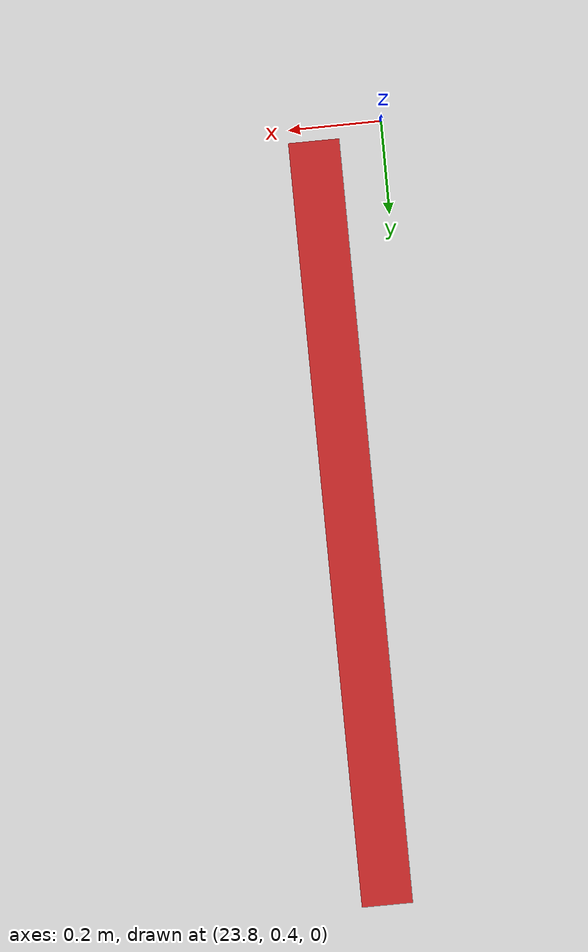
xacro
<?xml version="1.0"?>
<robot name="simple_box1">
<link name="world"/>
  <link name="my_box1">
    <inertial>
      <origin xyz="24 1.4 0.5" />
      <mass value="1.0" />
      <inertia  ixx="1.0" ixy="0.0"  ixz="0.0"  iyy="100.0"  iyz="0.0"  izz="1.0" />
    </inertial>
    <visual>
      <origin xyz="24 1.4 0.5"/>
      <geometry>
        <box size="0.1 1.5 1" />
      </geometry>
    </visual>
    <collision>
      <origin xyz="24 1.4 0.5"/>
      <geometry>
        <box size="0.1 1.5 1" />
      </geometry>
    </collision>
  </link>
  <gazebo reference="my_box1">
    <material>Gazebo/Red</material>
  </gazebo>
    <joint name="joint_my_box" type="fixed">
    <origin rpy="0 0 0" xyz="-0.05 -0.15 0"/>
    <child link="my_box1"/>
    <parent link="world"/>
  </joint>
</robot>
